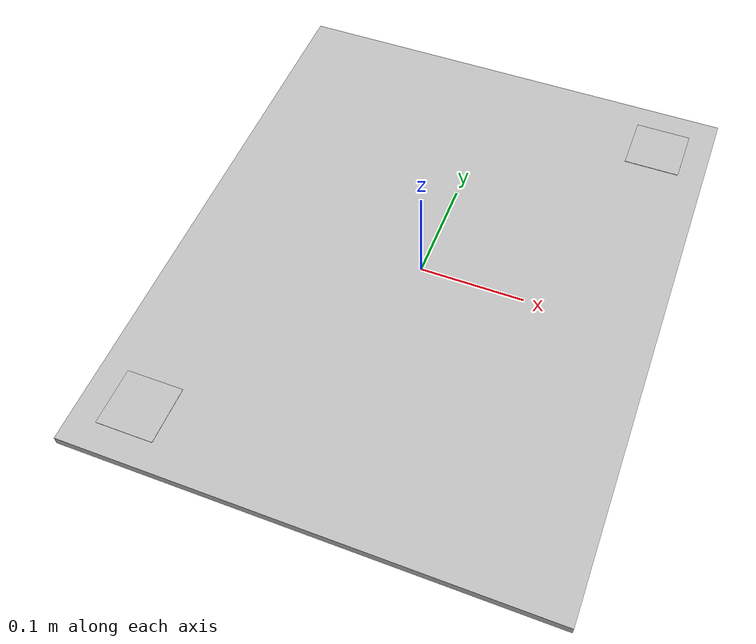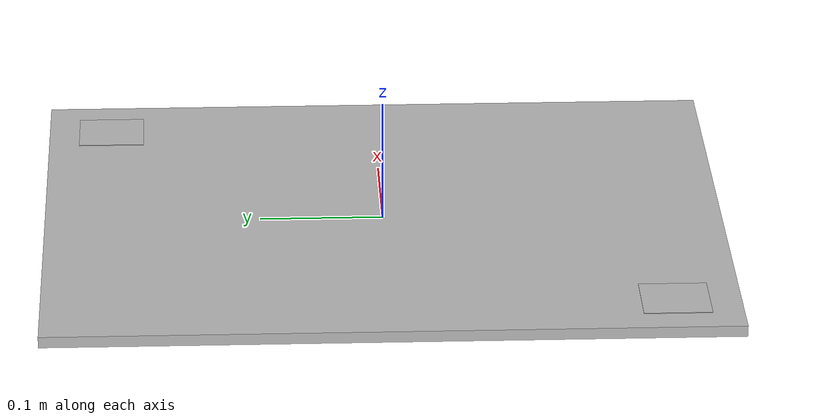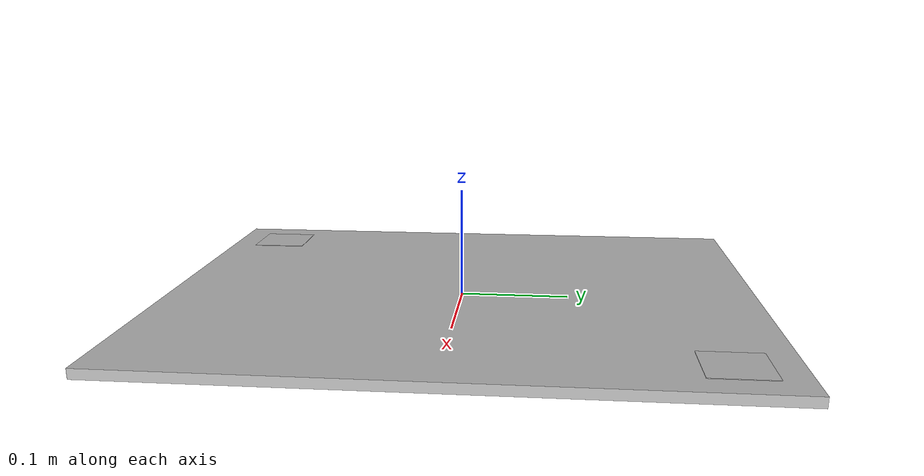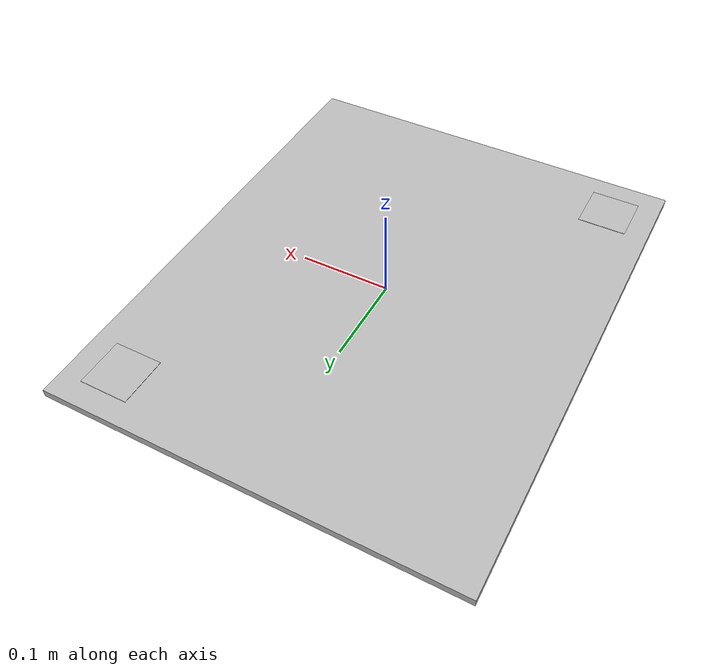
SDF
<?xml version="1.0" ?>
<sdf version="1.5">
  <model name="ar_helipad">
    <link name="link">
      <inertial>
        <mass>10.0</mass>
        <inertia>
          <ixx>0.1</ixx>
          <ixy>0</ixy>
          <ixz>0</ixz>
          <iyy>0.1</iyy>
          <iyz>0</iyz>
          <izz>0.1</izz>
        </inertia>
      </inertial>
      <collision name="collision_helipad">
        <pose>0 0 0.0 0 0 0</pose>
        <geometry>
          <box>
            <size>0.4 0.5 0.01</size>
          </box>
        </geometry>
      </collision>
      <visual name="visual_helipad">
        <pose>0 0 0.0 0 0 0</pose>
        <geometry>
          <box>
            <size>0.45 0.55 0.009</size>
          </box>
        </geometry>
        <material>
          <script>
            <uri>model://ar_helipad/materials/scripts</uri>
            <uri>model://ar_helipad/materials/textures</uri>
            <name>Helipad/Diffuse</name>
          </script>
        </material>
      </visual>
      <visual name="visual_marker3">
        <pose>0.173 0.223 0 0 0 0</pose>
        <geometry>
          <box>
            <size>0.054 0.054 0.01</size>
          </box>
        </geometry>
        <material>
          <script>
            <uri>model://ar_helipad/materials/scripts</uri>
            <uri>model://ar_helipad/materials/textures</uri>
            <name>Marker3/Diffuse</name>
          </script>
        </material>
      </visual>
      <visual name="visual_marker4">
        <pose>-0.173 -0.223 0 0 0 0</pose>
        <geometry>
          <box>
            <size>0.054 0.054 0.01</size>
          </box>
        </geometry>
        <material>
          <script>
            <uri>model://ar_helipad/materials/scripts</uri>
            <uri>model://ar_helipad/materials/textures</uri>
            <name>Marker4/Diffuse</name>
          </script>
        </material>
      </visual>
    </link>
  </model>
</sdf>
